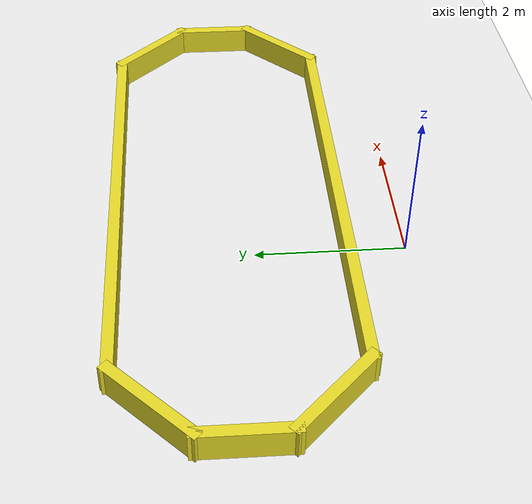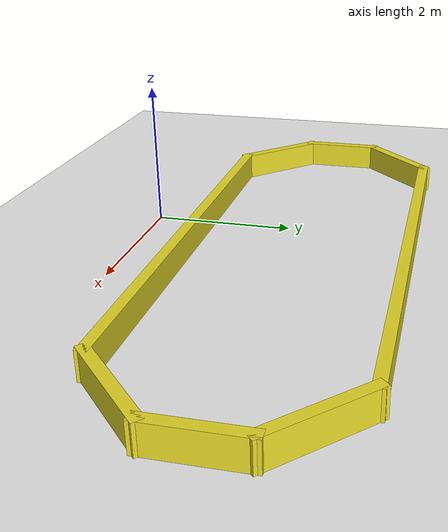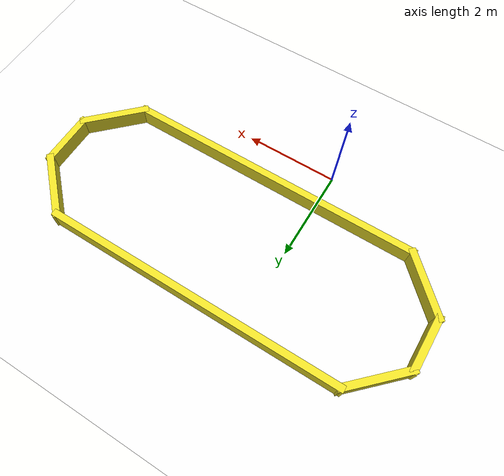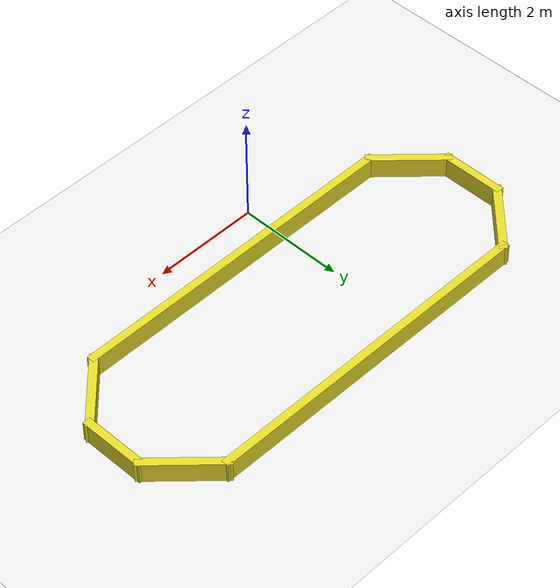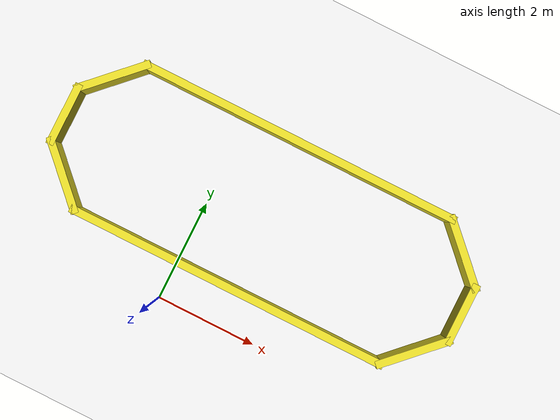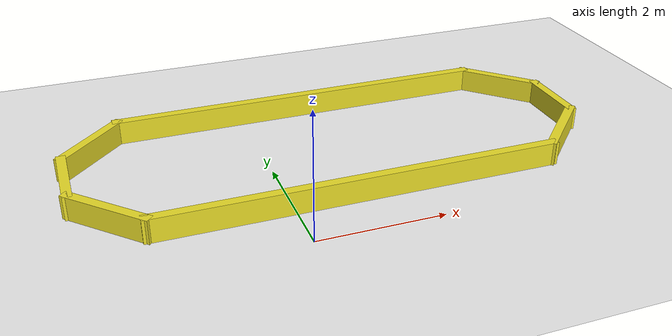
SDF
<sdf version="1.7">
 <world name="default">
  <light name="sun" type="directional">
   <pose>0 0 10 0 -0 0</pose>
   <diffuse>0.8 0.8 0.8 1</diffuse>
   <specular>0.2 0.2 0.2 1</specular>
   <attenuation>
    <range>1000</range>
    <constant>0.9</constant>
    <linear>0.01</linear>
    <quadratic>0.001</quadratic>
   </attenuation>
   <direction>-0.5 0.1 -0.9</direction>
   <spot><inner_angle>0</inner_angle><outer_angle>0</outer_angle><falloff>0</falloff></spot>
  </light>
  <model name="ground_plane">
   <static>1</static>
   <link name="link">
    <collision name="collision">
     <geometry><plane><normal>0 0 1</normal><size>20 20</size></plane></geometry>
     <surface>
      <contact><collide_bitmask>65535</collide_bitmask></contact>
      <friction><ode><mu>100</mu><mu2>50</mu2></ode></friction>
     </surface>
    </collision>
    <visual name="visual">
     <cast_shadows>0</cast_shadows>
     <geometry><plane><normal>0 0 1</normal><size>20 20</size></plane></geometry>
     <material>
      <script><uri>file://media/materials/scripts/gazebo.material</uri><name>Gazebo/White</name></script>
     </material>
    </visual>
   </link>
  </model>
  <gravity>0 0 -9.8</gravity>
  <magnetic_field>6e-06 2.3e-05 -4.2e-05</magnetic_field>
  <atmosphere type="adiabatic"/>
  <physics type="ode">
   <max_step_size>0.001</max_step_size>
   <real_time_factor>1</real_time_factor>
   <real_time_update_rate>1000</real_time_update_rate>
  </physics>
  <scene><ambient>0.4 0.4 0.4 1</ambient><background>0.7 0.7 0.7 1</background><shadows>1</shadows></scene>
  <spherical_coordinates>
   <surface_model>EARTH_WGS84</surface_model>
   <latitude_deg>0</latitude_deg>
   <longitude_deg>0</longitude_deg>
   <elevation>0</elevation>
   <heading_deg>0</heading_deg>
  </spherical_coordinates>
  <model name="custom_world">
   <pose>1.05952 2.45944 0 0 -0 0</pose>
   <link name="Wall_68">
    <collision name="Wall_68_Collision">
     <geometry><box><size>6.5 0.15 0.5</size></box></geometry>
     <pose>0 0 0.125 0 -0 0</pose>
    </collision>
    <visual name="Wall_68_Visual">
     <pose>0 0 0.125 0 -0 0</pose>
     <geometry><box><size>6.5 0.15 0.5</size></box></geometry>
     <material>
      <script><uri>file://media/materials/scripts/gazebo.material</uri><name>Gazebo/DarkYellow</name></script>
      <ambient>1 1 1 1</ambient>
     </material>
     <meta><layer>0</layer></meta>
    </visual>
    <pose>-0.003722 -1.65518 0 0 -0 0</pose>
   </link>
   <link name="Wall_69">
    <collision name="Wall_69_Collision">
     <geometry><box><size>1.5 0.15 0.5</size></box></geometry>
     <pose>0 0 0.125 0 -0 0</pose>
    </collision>
    <visual name="Wall_69_Visual">
     <pose>0 0 0.125 0 -0 0</pose>
     <geometry><box><size>1.5 0.15 0.5</size></box></geometry>
     <material>
      <script><uri>file://media/materials/scripts/gazebo.material</uri><name>Gazebo/DarkYellow</name></script>
      <ambient>1 1 1 1</ambient>
     </material>
     <meta><layer>0</layer></meta>
    </visual>
    <pose>3.64858 -1.17788 0 0 -0 0.785398</pose>
   </link>
   <link name="Wall_70">
    <collision name="Wall_70_Collision">
     <geometry><box><size>1.25 0.15 0.5</size></box></geometry>
     <pose>0 0 0.125 0 -0 0</pose>
    </collision>
    <visual name="Wall_70_Visual">
     <pose>0 0 0.125 0 -0 0</pose>
     <geometry><box><size>1.25 0.15 0.5</size></box></geometry>
     <material>
      <script><uri>file://media/materials/scripts/gazebo.material</uri><name>Gazebo/DarkYellow</name></script>
      <ambient>1 1 1 1</ambient>
     </material>
     <meta><layer>0</layer></meta>
    </visual>
    <pose>4.12587 -0.150582 0 0 -0 1.5708</pose>
   </link>
   <link name="Wall_71">
    <collision name="Wall_71_Collision">
     <geometry><box><size>1.5 0.15 0.5</size></box></geometry>
     <pose>0 0 0.125 0 -0 0</pose>
    </collision>
    <visual name="Wall_71_Visual">
     <pose>0 0 0.125 0 -0 0</pose>
     <geometry><box><size>1.5 0.15 0.5</size></box></geometry>
     <material>
      <script><uri>file://media/materials/scripts/gazebo.material</uri><name>Gazebo/DarkYellow</name></script>
      <ambient>1 1 1 1</ambient>
     </material>
     <meta><layer>0</layer></meta>
    </visual>
    <pose>3.64858 0.876716 0 0 -0 2.35619</pose>
   </link>
   <link name="Wall_72">
    <collision name="Wall_72_Collision">
     <geometry><box><size>6.5 0.15 0.5</size></box></geometry>
     <pose>0 0 0.125 0 -0 0</pose>
    </collision>
    <visual name="Wall_72_Visual">
     <pose>0 0 0.125 0 -0 0</pose>
     <geometry><box><size>6.5 0.15 0.5</size></box></geometry>
     <material>
      <script><uri>file://media/materials/scripts/gazebo.material</uri><name>Gazebo/DarkYellow</name></script>
      <ambient>1 1 1 1</ambient>
     </material>
     <meta><layer>0</layer></meta>
    </visual>
    <pose>-0.003722 1.35401 0 0 -0 3.14159</pose>
   </link>
   <link name="Wall_73">
    <collision name="Wall_73_Collision">
     <geometry><box><size>1.5 0.15 0.5</size></box></geometry>
     <pose>0 0 0.125 0 -0 0</pose>
    </collision>
    <visual name="Wall_73_Visual">
     <pose>0 0 0.125 0 -0 0</pose>
     <geometry><box><size>1.5 0.15 0.5</size></box></geometry>
     <material>
      <script><uri>file://media/materials/scripts/gazebo.material</uri><name>Gazebo/DarkYellow</name></script>
      <ambient>1 1 1 1</ambient>
     </material>
     <meta><layer>0</layer></meta>
    </visual>
    <pose>-3.65602 0.876716 0 0 -0 -2.35619</pose>
   </link>
   <link name="Wall_74">
    <collision name="Wall_74_Collision">
     <geometry><box><size>1.25 0.15 0.5</size></box></geometry>
     <pose>0 0 0.125 0 -0 0</pose>
    </collision>
    <visual name="Wall_74_Visual">
     <pose>0 0 0.125 0 -0 0</pose>
     <geometry><box><size>1.25 0.15 0.5</size></box></geometry>
     <material>
      <script><uri>file://media/materials/scripts/gazebo.material</uri><name>Gazebo/DarkYellow</name></script>
      <ambient>1 1 1 1</ambient>
     </material>
     <meta><layer>0</layer></meta>
    </visual>
    <pose>-4.13332 -0.150582 0 0 -0 -1.5708</pose>
   </link>
   <link name="Wall_75">
    <collision name="Wall_75_Collision">
     <geometry><box><size>1.5 0.15 0.5</size></box></geometry>
     <pose>0 0 0.125 0 -0 0</pose>
    </collision>
    <visual name="Wall_75_Visual">
     <pose>0 0 0.125 0 -0 0</pose>
     <geometry><box><size>1.5 0.15 0.5</size></box></geometry>
     <material>
      <script><uri>file://media/materials/scripts/gazebo.material</uri><name>Gazebo/DarkYellow</name></script>
      <ambient>1 1 1 1</ambient>
     </material>
     <meta><layer>0</layer></meta>
    </visual>
    <pose>-3.65602 -1.17788 0 0 -0 -0.785398</pose>
   </link>
   <static>1</static>
  </model>
 </world>
</sdf>
